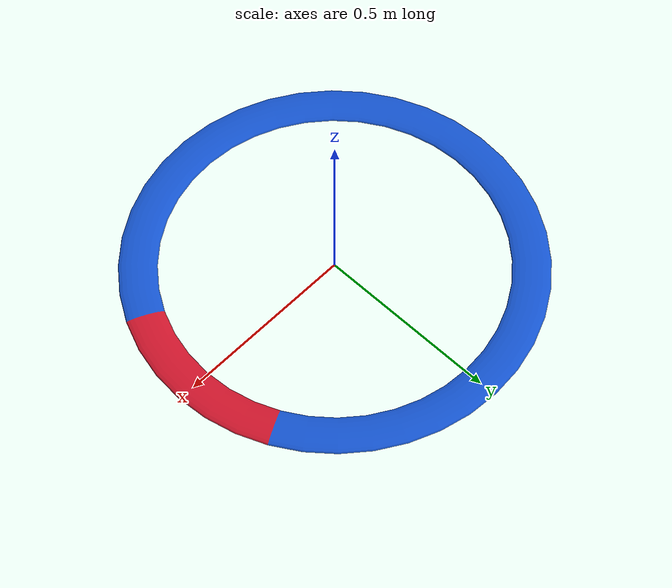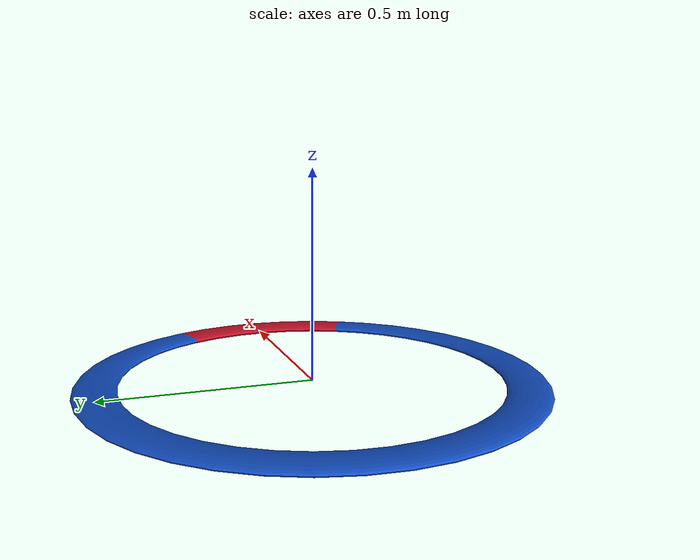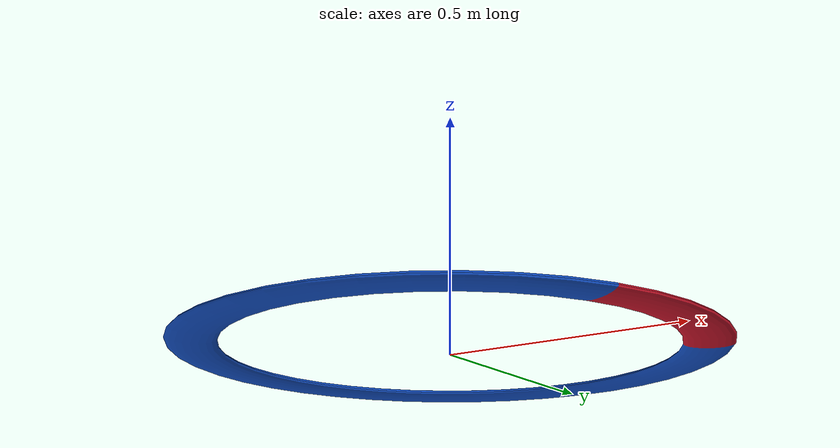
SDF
<?xml version='1.0'?>
<sdf version="1.5">

  <model name="marker">
    <static>true</static>
    <link name="link">

      <inertial>
        <mass>1.0</mass>
        <inertia>
          <ixx>0.1</ixx>       <!-- for a box: ixx = 0.083 * mass * (y*y + z*z) -->
          <ixy>0.0</ixy>       <!-- for a box: ixy = 0 -->
          <ixz>0.0</ixz>       <!-- for a box: ixz = 0 -->
          <iyy>0.1</iyy>       <!-- for a box: iyy = 0.083 * mass * (x*x + z*z) -->
          <iyz>0.0</iyz>       <!-- for a box: iyz = 0 -->
          <izz>0.1</izz>      <!-- for a box: izz = 0.083 * mass * (x*x + y*y) -->
        </inertia>
      </inertial>

      <visual name="visual">
        <geometry>
          <mesh>
            <uri>model://marker/marker.dae</uri>
          </mesh>
        </geometry>
      </visual>

    </link>
  </model>

</sdf>
